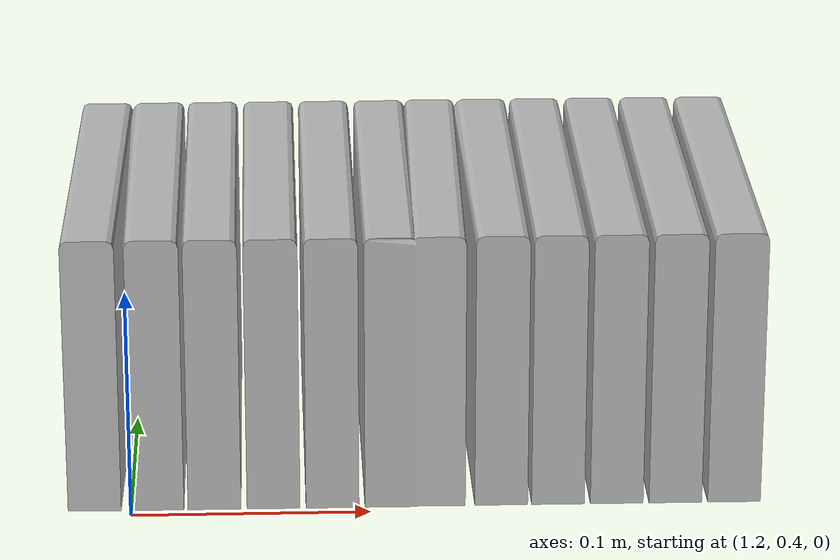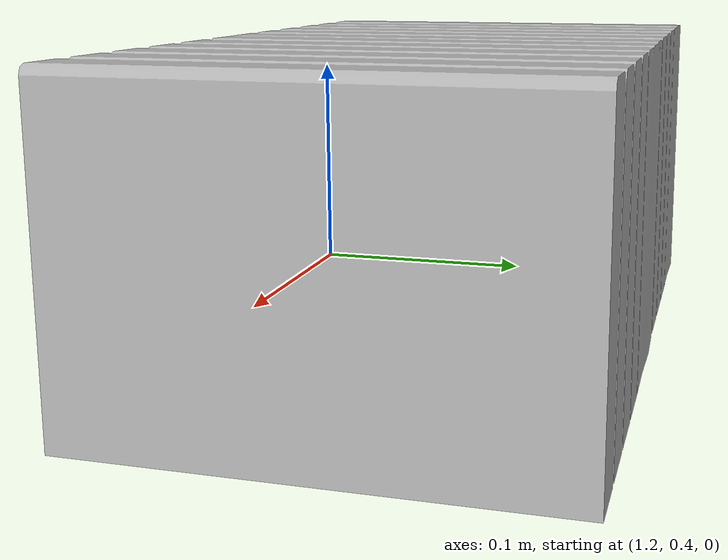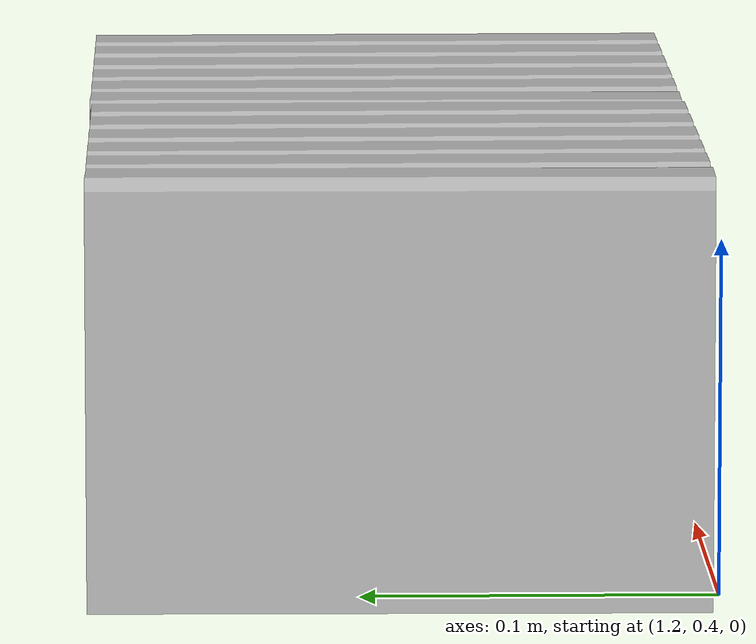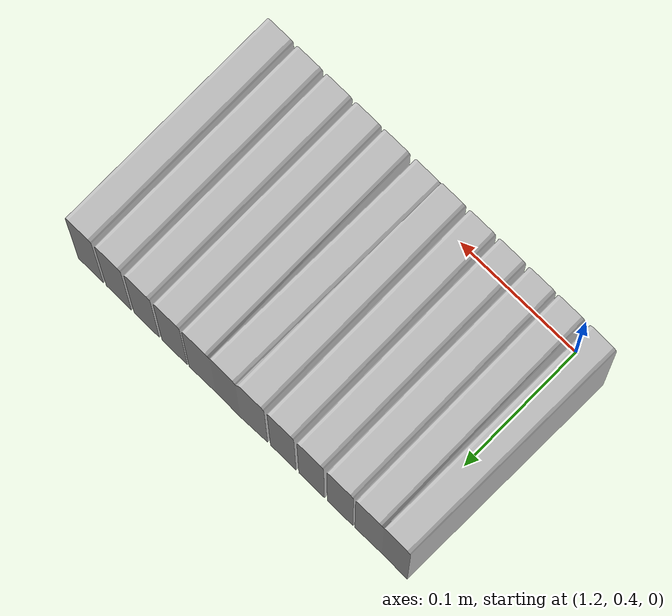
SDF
<?xml version="1.0" ?>
<sdf version="1.4">
  <model name="shelf1_book1_v7">
    <link name="body">
      <pose>0 0 0 0 0 0</pose>
      <inertial>
        <pose>   1.319048   0.488971   0.060420 0 0 0</pose>
        <mass>0.5</mass>
        <inertia>
          <ixx>0.01</ixx>
          <ixy>0</ixy>
          <ixz>0</ixz>
          <iyy>0.01</iyy>
          <iyz>0</iyz>
          <izz>0.01</izz>
        </inertia>
      </inertial>
      <collision name="collision">
        <geometry>
          <mesh>
            <uri>model://bookshelf/shelf1_items/book1_v7/book1_v7.dae</uri>
          </mesh>
        </geometry>
      </collision>
      <visual name="visual">
        <geometry>
          <mesh>
            <uri>model://bookshelf/shelf1_items/book1_v7/book1_v7.dae</uri>
          </mesh>
        </geometry>
      </visual>
    </link>
  </model>
</sdf>
